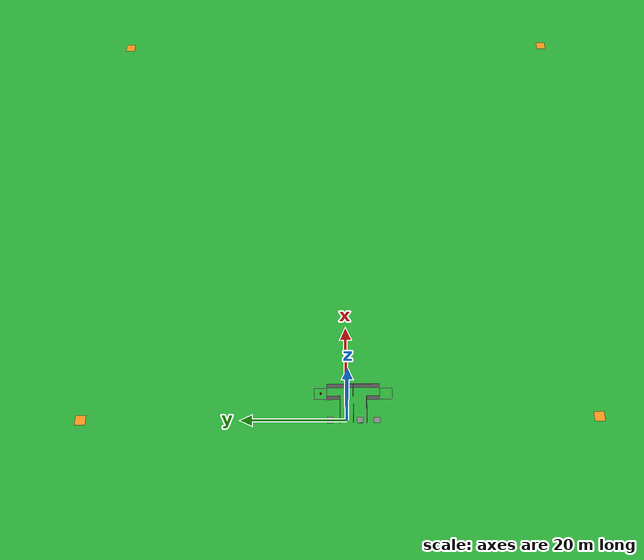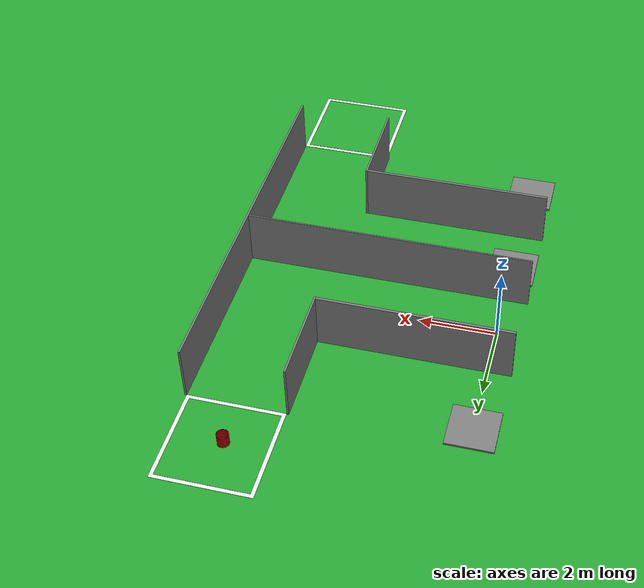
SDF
<sdf version="1.7">
 <world name="default">
  <scene><ambient>0.4 0.4 0.4 1</ambient><background>0.7 0.7 0.7 1</background><shadows>1</shadows></scene>
  <light name="sun" type="directional">
   <pose>0 0 10 0 -0 0</pose>
   <diffuse>1 1 1 1</diffuse>
   <specular>1 1 1 1</specular>
   <attenuation>
    <range>1000</range>
    <constant>0.9</constant>
    <linear>0.01</linear>
    <quadratic>0.001</quadratic>
   </attenuation>
   <direction>0.1 0.1 -0.9</direction>
   <spot><inner_angle>0</inner_angle><outer_angle>0</outer_angle><falloff>0</falloff></spot>
  </light>
  <model name="grass_field">
   <pose>49.4 1.25 0 0 -0 0</pose>
   <static>1</static>
   <link name="link">
    <collision name="collision">
     <geometry><plane><normal>0 0 1</normal><size>100 100</size></plane></geometry>
     <surface>
      <contact><collide_bitmask>65535</collide_bitmask></contact>
      <friction><ode><mu>100</mu><mu2>50</mu2></ode></friction>
     </surface>
    </collision>
    <visual name="visual">
     <cast_shadows>0</cast_shadows>
     <geometry><plane><normal>0 0 1</normal><size>100 100</size></plane></geometry>
     <material>
      <script><uri>file://media/materials/scripts/gazebo.material</uri><name>Gazebo/Green</name></script>
     </material>
    </visual>
   </link>
  </model>
  <gravity>0 0 -9.8</gravity>
  <magnetic_field>6e-06 2.3e-05 -4.2e-05</magnetic_field>
  <atmosphere type="adiabatic"/>
  <physics type="ode">
   <max_step_size>0.001</max_step_size>
   <real_time_factor>1</real_time_factor>
   <real_time_update_rate>1000</real_time_update_rate>
  </physics>
  <scene><ambient>0.4 0.4 0.4 1</ambient><background>0.7 0.7 0.7 1</background><shadows>1</shadows></scene>
  <spherical_coordinates>
   <surface_model>EARTH_WGS84</surface_model>
   <latitude_deg>0</latitude_deg>
   <longitude_deg>0</longitude_deg>
   <elevation>0</elevation>
   <heading_deg>0</heading_deg>
  </spherical_coordinates>
  <model name="orange_board_1">
   <pose>0.4 50.25 0 0 -0 0</pose>
   <static>1</static>
   <link name="link">
    <collision name="collision"><geometry><box><size>2 2 0.001</size></box></geometry></collision>
    <visual name="visual">
     <geometry><box><size>2 2 0.001</size></box></geometry>
     <material>
      <script><uri>file://media/materials/scripts/gazebo.material</uri><name>Gazebo/Orange</name></script>
     </material>
    </visual>
   </link>
  </model>
  <model name="orange_board_2">
   <pose>98.4 50.25 0 0 -0 0</pose>
   <static>1</static>
   <link name="link">
    <collision name="collision"><geometry><box><size>2 2 0.001</size></box></geometry></collision>
    <visual name="visual">
     <geometry><box><size>2 2 0.001</size></box></geometry>
     <material>
      <script><uri>file://media/materials/scripts/gazebo.material</uri><name>Gazebo/Orange</name></script>
     </material>
    </visual>
   </link>
  </model>
  <model name="orange_board_3">
   <pose>98.4 -47.75 0 0 -0 0</pose>
   <static>1</static>
   <link name="link">
    <collision name="collision"><geometry><box><size>2 2 0.001</size></box></geometry></collision>
    <visual name="visual">
     <geometry><box><size>2 2 0.001</size></box></geometry>
     <material>
      <script><uri>file://media/materials/scripts/gazebo.material</uri><name>Gazebo/Orange</name></script>
     </material>
    </visual>
   </link>
  </model>
  <model name="orange_board_4">
   <pose>0.4 -47.75 0 0 -0 0</pose>
   <static>1</static>
   <link name="link">
    <collision name="collision"><geometry><box><size>2 2 0.001</size></box></geometry></collision>
    <visual name="visual">
     <geometry><box><size>2 2 0.001</size></box></geometry>
     <material>
      <script><uri>file://media/materials/scripts/gazebo.material</uri><name>Gazebo/Orange</name></script>
     </material>
    </visual>
   </link>
  </model>
  <model name="wall1">
   <pose>3.125 -1.25 0.75 0 -0 0</pose>
   <static>1</static>
   <link name="link">
    <collision name="collision"><geometry><box><size>7.45 0.04 1.5</size></box></geometry></collision>
    <visual name="visual">
     <geometry><box><size>7.45 0.04 1.5</size></box></geometry>
     <material>
      <ambient>0.5 0.5 0.5 1</ambient>
      <diffuse>0.5 0.5 0.5 1</diffuse>
      <specular>0.1 0.1 0.1 1</specular>
      <emissive>0 0 0 0</emissive>
     </material>
    </visual>
   </link>
  </model>
  <model name="wall2">
   <pose>6.875 -1.25 0.75 0 -0 1.5708</pose>
   <static>1</static>
   <link name="link">
    <collision name="collision"><geometry><box><size>10 0.05 1.5</size></box></geometry></collision>
    <visual name="visual">
     <geometry><box><size>10 0.05 1.5</size></box></geometry>
     <material>
      <ambient>0.5 0.5 0.5 1</ambient>
      <diffuse>0.5 0.5 0.5 1</diffuse>
      <specular>0.1 0.1 0.1 1</specular>
      <emissive>0 0 0 0</emissive>
     </material>
    </visual>
   </link>
  </model>
  <model name="wall3">
   <pose>1.85 -3.785 0.75 0 -0 0</pose>
   <static>1</static>
   <link name="link">
    <collision name="collision"><geometry><box><size>4.9 0.07 1.5</size></box></geometry></collision>
    <visual name="visual">
     <geometry><box><size>4.9 0.07 1.5</size></box></geometry>
     <material>
      <ambient>0.5 0.5 0.5 1</ambient>
      <diffuse>0.5 0.5 0.5 1</diffuse>
      <specular>0.1 0.1 0.1 1</specular>
      <emissive>0 0 0 0</emissive>
     </material>
    </visual>
   </link>
  </model>
  <model name="wall4">
   <pose>4.325 -5 0.75 0 -0 1.5708</pose>
   <static>1</static>
   <link name="link">
    <collision name="collision"><geometry><box><size>2.5 0.05 1.5</size></box></geometry></collision>
    <visual name="visual">
     <geometry><box><size>2.5 0.05 1.5</size></box></geometry>
     <material>
      <ambient>0.5 0.5 0.5 1</ambient>
      <diffuse>0.5 0.5 0.5 1</diffuse>
      <specular>0.1 0.1 0.1 1</specular>
      <emissive>0 0 0 0</emissive>
     </material>
    </visual>
   </link>
  </model>
  <model name="wall5">
   <pose>1.85 1.285 0.75 0 -0 0</pose>
   <static>1</static>
   <link name="link">
    <collision name="collision"><geometry><box><size>4.9 0.07 1.5</size></box></geometry></collision>
    <visual name="visual">
     <geometry><box><size>4.9 0.07 1.5</size></box></geometry>
     <material>
      <ambient>0.5 0.5 0.5 1</ambient>
      <diffuse>0.5 0.5 0.5 1</diffuse>
      <specular>0.1 0.1 0.1 1</specular>
      <emissive>0 0 0 0</emissive>
     </material>
    </visual>
   </link>
  </model>
  <model name="wall6">
   <pose>4.325 2.5 0.75 0 -0 1.5708</pose>
   <static>1</static>
   <link name="link">
    <collision name="collision"><geometry><box><size>2.5 0.05 1.5</size></box></geometry></collision>
    <visual name="visual">
     <geometry><box><size>2.5 0.05 1.5</size></box></geometry>
     <material>
      <ambient>0.5 0.5 0.5 1</ambient>
      <diffuse>0.5 0.5 0.5 1</diffuse>
      <specular>0.1 0.1 0.1 1</specular>
      <emissive>0 0 0 0</emissive>
     </material>
    </visual>
   </link>
  </model>
  <model name="right_start_indoor">
   <pose>0 -5.65 0.025 0 -0 0</pose>
   <static>1</static>
   <link name="link">
    <collision name="collision"><geometry><box><size>1.2 1.2 0.05</size></box></geometry></collision>
    <visual name="visual">
     <geometry><box><size>1.2 1.2 0.05</size></box></geometry>
     <material>
      <ambient>0.5 0.5 0.5 1</ambient>
      <diffuse>0.5 0.5 0.5 1</diffuse>
      <specular>0.1 0.1 0.1 1</specular>
      <emissive>0 0 0 0</emissive>
     </material>
    </visual>
   </link>
  </model>
  <model name="right_start_outdoor">
   <pose>0 -2.5 0.025 0 -0 0</pose>
   <static>1</static>
   <link name="link">
    <collision name="collision"><geometry><box><size>1.2 1.2 0.05</size></box></geometry></collision>
    <visual name="visual">
     <geometry><box><size>1.2 1.2 0.05</size></box></geometry>
     <material>
      <ambient>0.5 0.5 0.5 1</ambient>
      <diffuse>0.5 0.5 0.5 1</diffuse>
      <specular>0.1 0.1 0.1 1</specular>
      <emissive>0 0 0 0</emissive>
     </material>
    </visual>
   </link>
  </model>
  <model name="left_start_outdoor">
   <pose>0 3.15 0.025 0 -0 0</pose>
   <static>1</static>
   <link name="link">
    <collision name="collision"><geometry><box><size>1.2 1.2 0.05</size></box></geometry></collision>
    <visual name="visual">
     <geometry><box><size>1.2 1.2 0.05</size></box></geometry>
     <material>
      <ambient>0.5 0.5 0.5 1</ambient>
      <diffuse>0.5 0.5 0.5 1</diffuse>
      <specular>0.1 0.1 0.1 1</specular>
      <emissive>0 0 0 0</emissive>
     </material>
    </visual>
   </link>
  </model>
  <model name="right_dropzone_area">
   <pose>5.6 -7.5 0.026 0 -0 0</pose>
   <static>1</static>
   <link name="link">
    <collision name="collision"><geometry><box><size>2.3 2.3 0.001</size></box></geometry></collision>
    <visual name="visual">
     <geometry><box><size>2.3 2.3 0.001</size></box></geometry>
     <material>
      <script><uri>file://media/materials/scripts/gazebo.material</uri><name>Gazebo/Green</name></script>
     </material>
    </visual>
   </link>
  </model>
  <model name="right_dropzone_area_barrier">
   <pose>5.6 -7.5 0.025 0 -0 0</pose>
   <static>1</static>
   <link name="link">
    <collision name="collision"><geometry><box><size>2.5 2.5 0.001</size></box></geometry></collision>
    <visual name="visual">
     <geometry><box><size>2.5 2.5 0.001</size></box></geometry>
     <material>
      <script><uri>file://media/materials/scripts/gazebo.material</uri><name>Gazebo/White</name></script>
     </material>
    </visual>
   </link>
  </model>
  <model name="left_dropzone_area">
   <pose>5.6 5 0.026 0 -0 0</pose>
   <static>1</static>
   <link name="link">
    <collision name="collision"><geometry><box><size>2.3 2.3 0.001</size></box></geometry></collision>
    <visual name="visual">
     <geometry><box><size>2.3 2.3 0.001</size></box></geometry>
     <material>
      <script><uri>file://media/materials/scripts/gazebo.material</uri><name>Gazebo/Green</name></script>
     </material>
    </visual>
   </link>
  </model>
  <model name="left_dropzone_area_barrier">
   <pose>5.6 5 0.025 0 -0 0</pose>
   <static>1</static>
   <link name="link">
    <collision name="collision"><geometry><box><size>2.5 2.5 0.001</size></box></geometry></collision>
    <visual name="visual">
     <geometry><box><size>2.5 2.5 0.001</size></box></geometry>
     <material>
      <script><uri>file://media/materials/scripts/gazebo.material</uri><name>Gazebo/White</name></script>
     </material>
    </visual>
   </link>
  </model>
  <model name="drop_zone">
   <include><uri>model://drop_zone</uri></include>
   <pose>5.50525 4.93527 0.035956 0 0 0</pose>
  </model>
 </world>
</sdf>

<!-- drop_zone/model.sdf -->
<sdf version='1.7'>
  <model name='drop_zone'>
    <link name='link'>
      <self_collide>0</self_collide>
      <enable_wind>0</enable_wind>
      <kinematic>0</kinematic>
      <pose>0 0 0 0 -0 0</pose>
      <gravity>1</gravity>
      <visual name='visual'>
        <geometry>
            <mesh>
                <uri>model://drop_zone/meshes/drop_zone.dae</uri>
                <scale>1 1 1</scale>
            </mesh>
        </geometry>
        <material>
          <script>
            <name>Gazebo/Grey</name>
            <uri>file://media/materials/scripts/gazebo.material</uri>
          </script>
          <shader type='pixel'>
            <normal_map>__default__</normal_map>
          </shader>
          <ambient>0.643 0 0 1</ambient>
          <diffuse>0.643 0 0 1</diffuse>
          <specular>0.643 0 0 1</specular>
          <emissive>0.643 0 0 1</emissive>
        </material>
        <pose>0 0 0 0 -0 0</pose>
        <transparency>0</transparency>
        <cast_shadows>1</cast_shadows>
      </visual>
      <collision name='collision'>
        <pose>0 0 0 0 -0 0</pose>
        <geometry>
            <mesh>
                <uri>model://drop_zone/meshes/drop_zone.dae</uri>
                <scale>1 1 1</scale>
            </mesh>
        </geometry>
      </collision>
    </link>
    <static>0</static>
    <allow_auto_disable>1</allow_auto_disable>
  </model>
</sdf>
